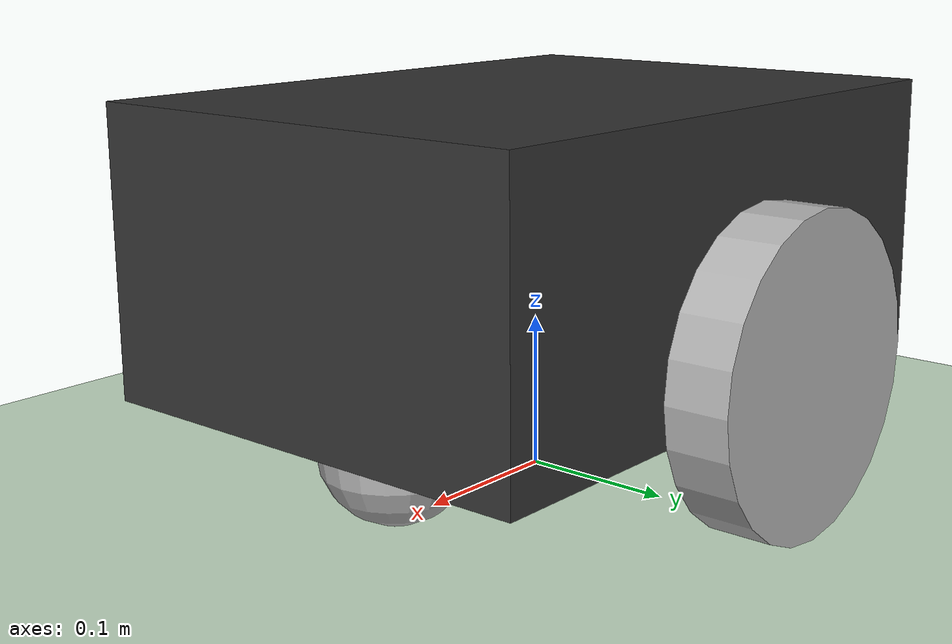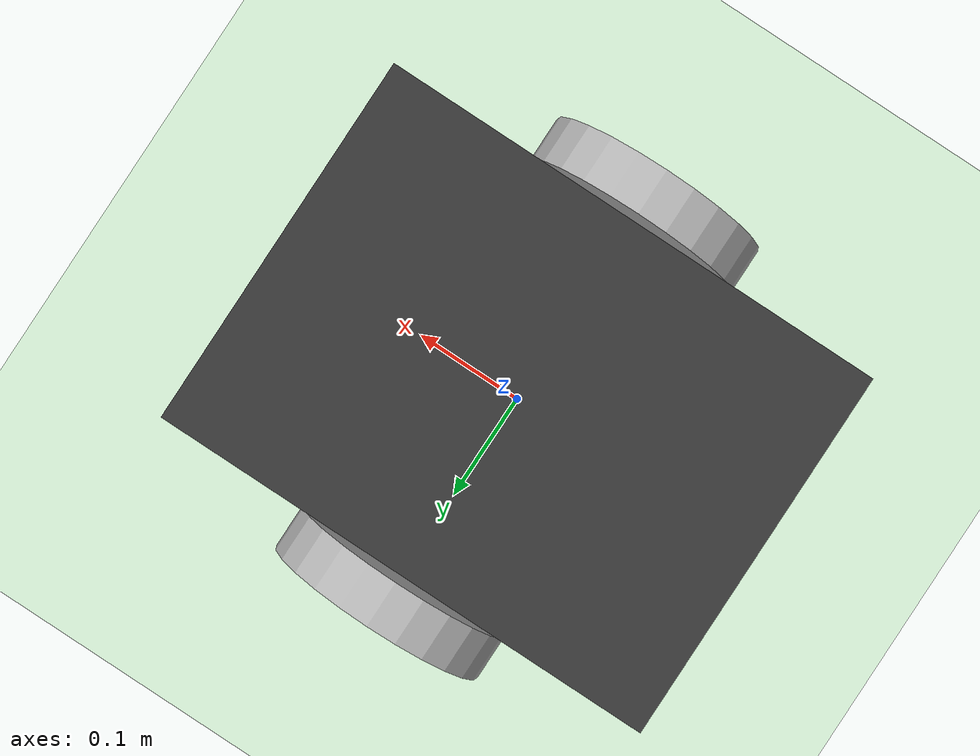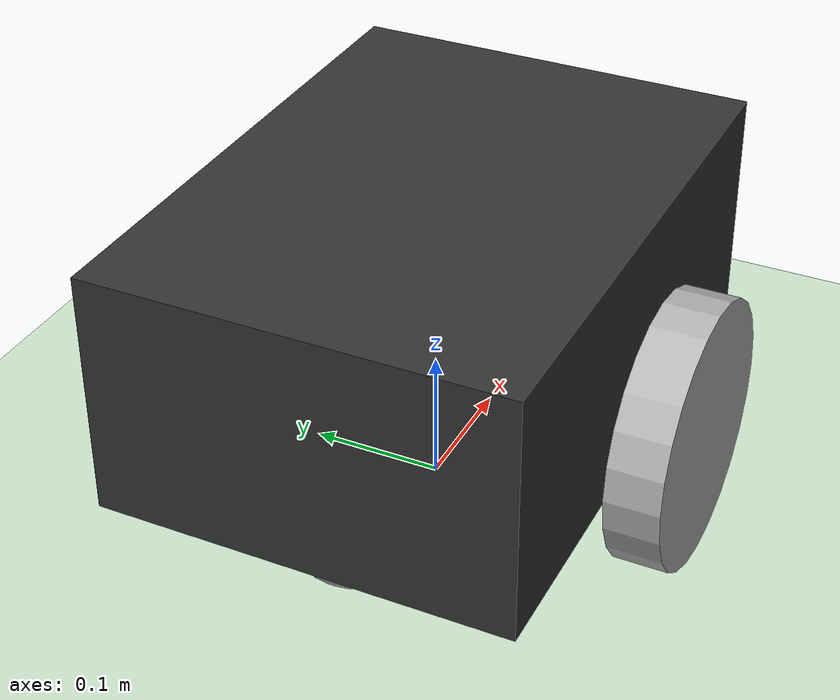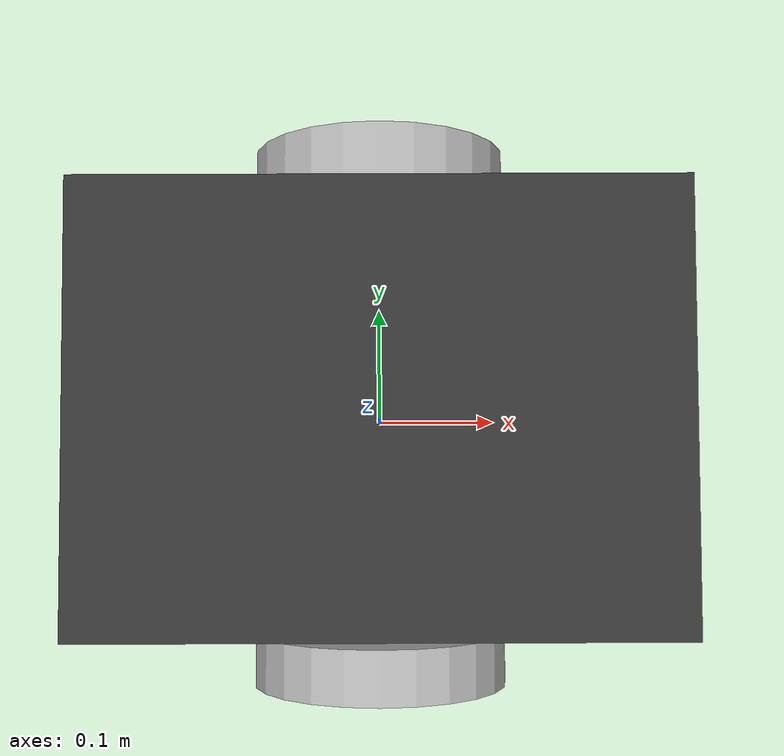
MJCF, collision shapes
<mujoco model="jackal_safe_navigation">
	<compiler angle="radian" meshdir="meshes/" />

    <size njmax="3000" nconmax="1000"/>
    <option gravity="0 0 -9.81"/>
	<option timestep="0.001" integrator="RK4" iterations="50">
		<flag warmstart="enable"></flag>
	</option>

    <default>
        <geom condim="6" density="5" rgba="0.7 0.7 0.7 1" size=".05" type="sphere"/>
        <joint damping=".001"/>
        <site size="0.032" type="sphere"/>
        <velocity ctrlrange="-1 1" ctrllimited="true" forcerange="-1 1" forcelimited="true"/>
    </default>

    <asset>
        <!--Meshes-->
        <mesh name="base" file="jackal-base.stl" />
        <mesh name="wheel" file="jackal-wheel.stl" />
        <mesh name="fender" file="jackal-fender.stl" />

        <!--Textures-->
        <texture builtin="gradient" height="100" rgb1="1 1 1" rgb2="0 0 0" type="skybox" width="100"/>
        <texture builtin="flat" height="1278" mark="cross" markrgb="1 1 1" name="texgeom" random="0.01" rgb1="0.8 0.6 0.4" rgb2="0.8 0.6 0.4" type="cube" width="127"/>
        <texture builtin="checker" height="100" name="texplane" rgb1="0 0 0" rgb2="0.8 0.8 0.8" type="2d" width="100"/>
        <material name="MatPlane" reflectance="0.5" shininess="1" specular="1" texrepeat="60 60" texture="texplane"/>
        <material name="geom" texture="texgeom" texuniform="true"/>
    </asset>

	<worldbody>
        <!-- Light Property -->
        <light cutoff="100" diffuse="1 1 1" dir="-0 0 -1.3" directional="true" exponent="1" pos="0 0 1.3" specular=".1 .1 .1"/>

        <!-- Floor Property -->
        <geom conaffinity="1" condim="3" material="MatPlane" name="floor" pos="0 0 0" rgba="0.8 0.9 0.8 1" size="40 40 40" type="plane"/>

		<!-- camera: front view -->
		<camera mode="fixed" name="frontview" pos="3.0 0 1.85" quat="0.56 0.43 0.43 0.56"/>

		<!-- Robot -->
		<body name="robot" pos="0 0 0.06344">
            <site name="robot" pos="0 0 0"/>
            <joint type="free" name="robot" damping="0"/>

            <geom pos="0 0 -0.0655" quat="0.5 0.5 0.5 0.5" type="mesh" contype="0" conaffinity="0" group="1" rgba="0.15 0.15 0.15 1" mesh="base"/>
            <geom pos="0 0 0" quat="0 0 0 1" type="mesh" contype="0" conaffinity="0" group="1" rgba="1.0 0.7 0 1" mesh="fender"/>
            <geom pos="0 0 0" quat="1 0 0 0" type="mesh" contype="0" conaffinity="0" group="1" rgba="1.0 0.7 0 1" mesh="fender"/>
            <geom pos="0.131 0.187795 0.0345" quat="0.707107 0.707107 0 0" type="mesh" contype="0" conaffinity="0" group="1" rgba="0.15 0.15 0.15 1" mesh="wheel"/>
            <geom pos="0.131 -0.187795 0.0345" quat="0.707107 0.707107 0 0" type="mesh" contype="0" conaffinity="0" group="1" rgba="0.15 0.15 0.15 1" mesh="wheel"/>
            <geom pos="-0.131 0.187795 0.0345" quat="0.707107 0.707107 0 0" type="mesh" contype="0" conaffinity="0" group="1" rgba="0.15 0.15 0.15 1" mesh="wheel"/>
            <geom pos="-0.131 -0.187795 0.0345" quat="0.707107 0.707107 0 0" type="mesh" contype="0" conaffinity="0" group="1" rgba="0.15 0.15 0.15 1" mesh="wheel"/>

            <geom name="robot" size="0.21 0.155 0.092" pos="0 0 0.092" type="box" rgba="0.2 0.2 0.2 1" group="5"/>
            <body name="left" pos="0.0 0.187795 0.0345">
                <joint type="hinge" name="left" axis="0 1 0"/>
                <geom type="cylinder" name="left" size="0.098 0.02" quat="0.707107 0.707107 0 0" group="5" condim="4"/>
            </body>
            <body name="right" pos="0.0 -0.187795 0.0345">
                <joint type="hinge" name="right" axis="0 1 0"/>
                <geom type="cylinder" name="right" size="0.098 0.02" quat="0.707107 0.707107 0 0" group="5" condim="4"/>
            </body>
            <body name="front" pos="0.131 0 -0.0155">
                <joint name="front" type="ball"/>
                <geom name="front" size="0.048" group="5"/>
            </body>
            <body name="rear" pos="-0.131 0 -0.0155">
                <joint name="rear" type="ball"/>
                <geom name="rear" size="0.048" group="5"/>
            </body>
		</body>
	</worldbody>

    <sensor>
        <!-- Used for observation -->
        <accelerometer site="robot" name="accelerometer"/>
        <velocimeter site="robot" name="velocimeter"/>
        <gyro site="robot" name="gyro"/>
    </sensor>

    <!--ACTUATORS-->
    <actuator>

        <motor gear="0.3 0 0 0 0 0" joint="left" name="left"/>
        <motor gear="0.3 0 0 0 0 0" joint="right" name="right"/>
    </actuator>
</mujoco>
